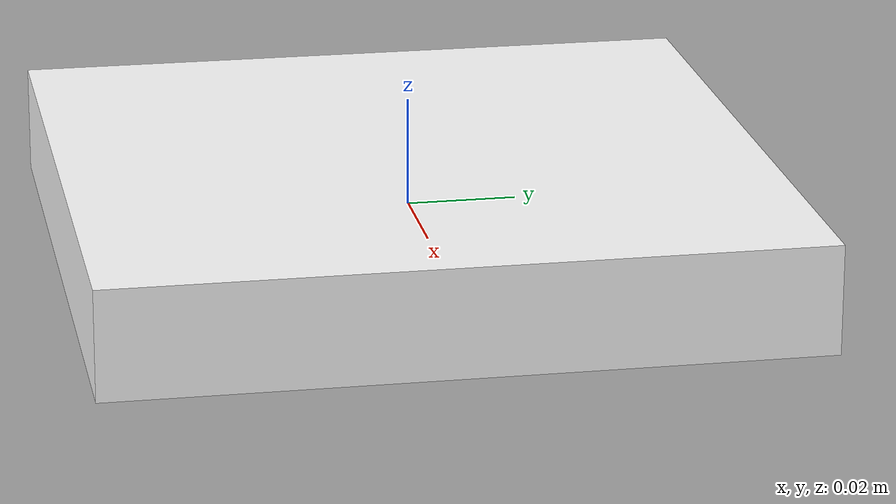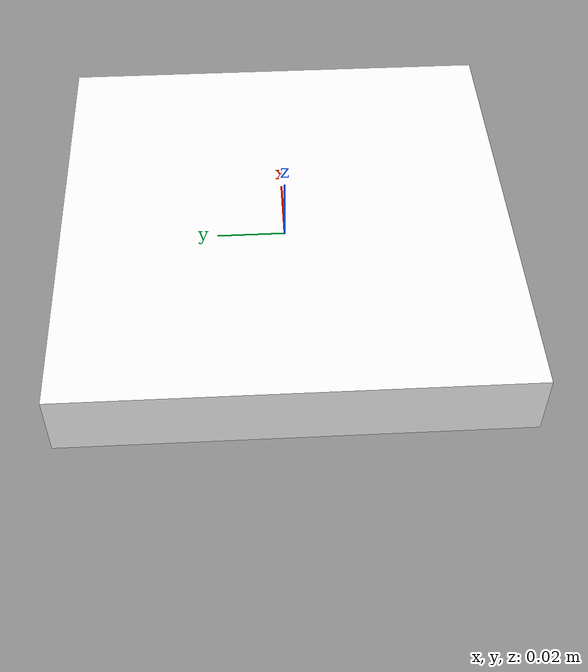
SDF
<?xml version='1.0'?>
<sdf version="1.10">
  <model name="aruco_303">
    <static>true</static>
    <link name="aruco_303_link">
      <visual name="visual">
      <pose>0 0 0 0 0 0</pose>
      <geometry>
        <box>
          <size>0.1285714286 0.1285714286 0.02</size>
        </box>
      </geometry>
      <material>
        <ambient>1.0 1.0 1.0</ambient>
        <diffuse>1.0 1.0 1.0</diffuse>
        <specular>1.0 1.0 1.0</specular>
        <pbr>
          <metal>
            <albedo_map>model://aruco_303/materials/aruco_303.png</albedo_map>
          </metal>
        </pbr>
      </material>
    </visual>
    </link>
  </model>
</sdf>
